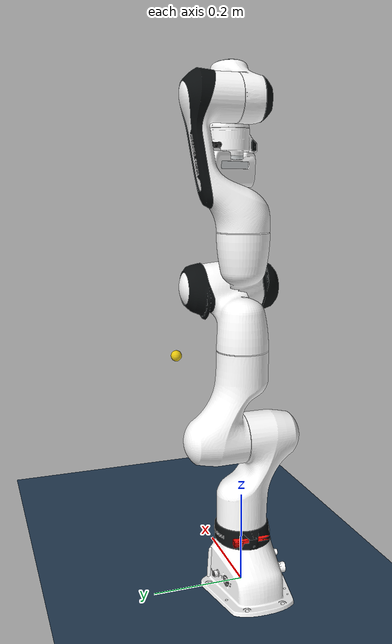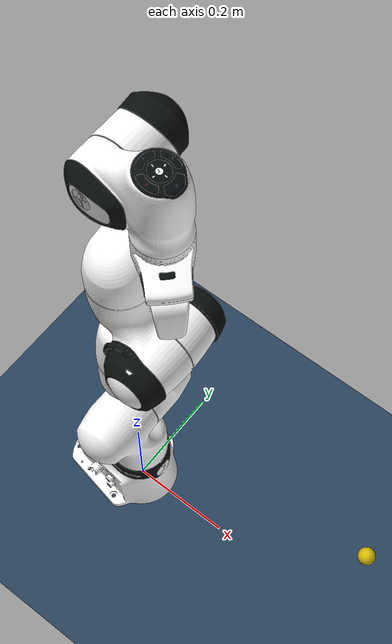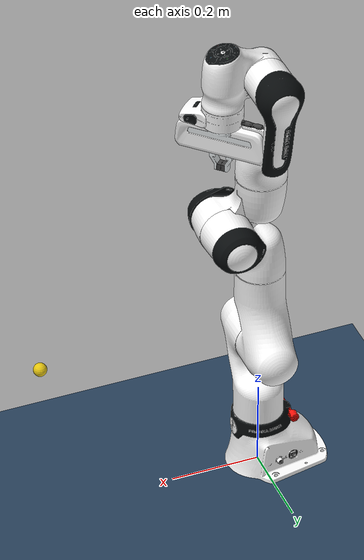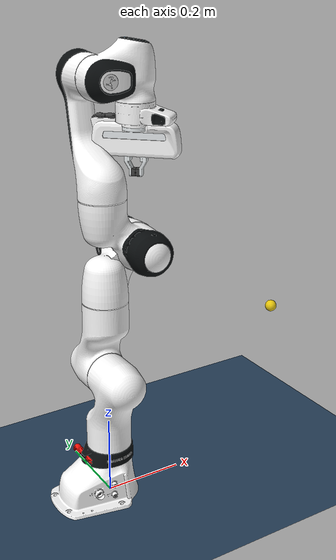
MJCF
<mujoco model="fr3_scene">
  <include file="fr3.xml"/>

  <statistic center="0.35 0 0.35" extent="1.1"/>
  <visual>
    <headlight diffuse="0.6 0.6 0.6" ambient="0.3 0.3 0.3" specular="0 0 0"/>
    <rgba haze="0.15 0.25 0.35 1"/>
    <global azimuth="150" elevation="-25"/>
  </visual>

  <asset>
    <texture type="skybox" builtin="gradient" rgb1="0.3 0.5 0.7" rgb2="0 0 0" width="512" height="3072"/>
    <texture name="groundplane" type="2d" builtin="checker" mark="edge" rgb1="0.2 0.3 0.4"
             rgb2="0.1 0.2 0.3" markrgb="0.8 0.8 0.8" width="300" height="300"/>
    <material name="groundplane" texture="groundplane" texuniform="true" texrepeat="5 5" reflectance="0.2"/>
  </asset>

  <worldbody>
    <light pos="0 0 2.5" dir="0 0 -1" directional="true"/>
    <geom name="floor" type="plane" size="0 0 0.05" material="groundplane"/>
    <!-- 목표 마커: mocap body. 충돌하지 않음(contype/conaffinity 0). -->
    <body name="target" mocap="true" pos="0.5 0 0.4">
      <geom name="target_marker" type="sphere" size="0.015" rgba="1 0.85 0 0.85"
            contype="0" conaffinity="0" group="1"/>
    </body>
  </worldbody>
</mujoco>

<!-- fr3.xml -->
<mujoco model="fr3_hand">
  <compiler angle="radian" meshdir="../meshes/" autolimits="true"/>
  <option timestep="0.002" integrator="implicitfast"/>
  <asset>
    <mesh name="fr3_link0_v0" content_type="model/obj" file="visual/fr3_link0_v0.obj"/>
    <mesh name="fr3_link0_v1" content_type="model/obj" file="visual/fr3_link0_v1.obj"/>
    <mesh name="fr3_link0_v2" content_type="model/obj" file="visual/fr3_link0_v2.obj"/>
    <mesh name="fr3_link0_v3" content_type="model/obj" file="visual/fr3_link0_v3.obj"/>
    <mesh name="fr3_link0_c" content_type="model/stl" file="collision/fr3_link0_c.stl"/>
    <mesh name="fr3_link1_v0" content_type="model/obj" file="visual/fr3_link1_v0.obj"/>
    <mesh name="fr3_link1_c" content_type="model/stl" file="collision/fr3_link1_c.stl"/>
    <mesh name="fr3_link2_v0" content_type="model/obj" file="visual/fr3_link2_v0.obj"/>
    <mesh name="fr3_link2_c" content_type="model/stl" file="collision/fr3_link2_c.stl"/>
    <mesh name="fr3_link3_v0" content_type="model/obj" file="visual/fr3_link3_v0.obj"/>
    <mesh name="fr3_link3_v1" content_type="model/obj" file="visual/fr3_link3_v1.obj"/>
    <mesh name="fr3_link3_c" content_type="model/stl" file="collision/fr3_link3_c.stl"/>
    <mesh name="fr3_link4_v0" content_type="model/obj" file="visual/fr3_link4_v0.obj"/>
    <mesh name="fr3_link4_v1" content_type="model/obj" file="visual/fr3_link4_v1.obj"/>
    <mesh name="fr3_link4_c" content_type="model/stl" file="collision/fr3_link4_c.stl"/>
    <mesh name="fr3_link5_v0" content_type="model/obj" file="visual/fr3_link5_v0.obj"/>
    <mesh name="fr3_link5_v1" content_type="model/obj" file="visual/fr3_link5_v1.obj"/>
    <mesh name="fr3_link5_c" content_type="model/stl" file="collision/fr3_link5_c.stl"/>
    <mesh name="fr3_link6_v0" content_type="model/obj" file="visual/fr3_link6_v0.obj"/>
    <mesh name="fr3_link6_v1" content_type="model/obj" file="visual/fr3_link6_v1.obj"/>
    <mesh name="fr3_link6_v2" content_type="model/obj" file="visual/fr3_link6_v2.obj"/>
    <mesh name="fr3_link6_v3" content_type="model/obj" file="visual/fr3_link6_v3.obj"/>
    <mesh name="fr3_link6_v4" content_type="model/obj" file="visual/fr3_link6_v4.obj"/>
    <mesh name="fr3_link6_v5" content_type="model/obj" file="visual/fr3_link6_v5.obj"/>
    <mesh name="fr3_link6_c" content_type="model/stl" file="collision/fr3_link6_c.stl"/>
    <mesh name="fr3_link7_v0" content_type="model/obj" file="visual/fr3_link7_v0.obj"/>
    <mesh name="fr3_link7_v1" content_type="model/obj" file="visual/fr3_link7_v1.obj"/>
    <mesh name="fr3_link7_v2" content_type="model/obj" file="visual/fr3_link7_v2.obj"/>
    <mesh name="fr3_link7_c" content_type="model/stl" file="collision/fr3_link7_c.stl"/>
    <mesh name="hand_hand_v0" content_type="model/obj" file="visual/hand_hand_v0.obj"/>
    <mesh name="hand_hand_v1" content_type="model/obj" file="visual/hand_hand_v1.obj"/>
    <mesh name="hand_hand_v2" content_type="model/obj" file="visual/hand_hand_v2.obj"/>
    <mesh name="hand_hand_c" content_type="model/stl" file="collision/hand_hand_c.stl"/>
    <mesh name="hand_finger_v0" content_type="model/obj" file="visual/hand_finger_v0.obj"/>
    <mesh name="hand_finger_v1" content_type="model/obj" file="visual/hand_finger_v1.obj"/>
  </asset>
  <worldbody>
    <body name="base">
      <body name="fr3_link0">
        <inertial pos="-0.0172 0.00040000000000000002 0.074499999999999997" quat="0.66137700591566306 -0.25016086033996937 -0.25016086033996937 0.66137700591566306" mass="2.3965999999999998" diaginertia="0.011499999999999996 0.010765564437074635 0.0067344355629253613"/>
        <geom name="fr3_link0_vis0" pos="0 0 0" quat="1 0 0 0" type="mesh" contype="0" conaffinity="0" group="2" density="0" mesh="fr3_link0_v0" rgba="1 1 1 1"/>
        <geom name="fr3_link0_vis1" pos="0 0 0" quat="1 0 0 0" type="mesh" contype="0" conaffinity="0" group="2" density="0" mesh="fr3_link0_v1" rgba="1 0.071 0.039 1"/>
        <geom name="fr3_link0_vis2" pos="0 0 0" quat="1 0 0 0" type="mesh" contype="0" conaffinity="0" group="2" density="0" mesh="fr3_link0_v2" rgba="0.039 0.051 0.055 1"/>
        <geom name="fr3_link0_vis3" pos="0 0 0" quat="1 0 0 0" type="mesh" contype="0" conaffinity="0" group="2" density="0" mesh="fr3_link0_v3" rgba="0.02 0.02 0.02 1"/>
        <geom name="fr3_link0_col0" pos="0 0 0" quat="1 0 0 0" type="mesh" mesh="fr3_link0_c" group="3" rgba="0.8 0.3 0.3 0.4"/>
        <body name="fr3_link1" pos="0 0 0.333" gravcomp="1">
          <inertial pos="4.1279999999999999e-07 -0.018125132400000001 -0.038603597000000003" quat="0.99809800313002273 -0.060536425540137787 0.0038048852336018285 0.011010911817107692" mass="2.9274653453999999" diaginertia="0.023928621697059446 0.022724615921689208 0.0061063384524649321"/>
          <joint name="fr3_joint1" range="-2.9007 2.9007" actuatorfrcrange="-87 87" damping="0.003" frictionloss="0.2" armature="0.6057" actuatorgravcomp="true"/>
          <geom name="fr3_link1_vis0" quat="1 0 0 0" type="mesh" contype="0" conaffinity="0" group="2" density="0" mesh="fr3_link1_v0" rgba="1 1 1 1"/>
          <geom name="fr3_link1_col0" quat="1 0 0 0" type="mesh" mesh="fr3_link1_c" group="3" rgba="0.8 0.3 0.3 0.4"/>
          <body name="fr3_link2" quat="0.707107 -0.707107 0 0" gravcomp="1">
            <inertial pos="0.0031828863999999999 -0.074322164400000001 0.0088146084" quat="0.50259976647685223 0.58443644182649213 -0.46599807858824815 0.43436541178444088" mass="2.9355370338000002" diaginertia="0.062956723529790579 0.04119244983839894 0.024637066468455638"/>
            <joint name="fr3_joint2" range="-1.8361 1.8361" actuatorfrcrange="-87 87" damping="0.003" frictionloss="0.2" armature="0.6057" actuatorgravcomp="true"/>
            <geom name="fr3_link2_vis0" quat="1 0 0 0" type="mesh" contype="0" conaffinity="0" group="2" density="0" mesh="fr3_link2_v0" rgba="1 1 1 1"/>
            <geom name="fr3_link2_col0" quat="1 0 0 0" type="mesh" mesh="fr3_link2_c" group="3" rgba="0.8 0.3 0.3 0.4"/>
            <body name="fr3_link3" pos="0 -0.316 0" quat="0.707107 0.707107 0 0" gravcomp="1">
              <inertial pos="0.040701568600000002 -0.0048200565000000003 -0.028973082300000001" quat="0.92102538508631182 -0.24416120251242499 0.15527184300288374 0.26074547356528777" mass="2.2449013699" diaginertia="0.026740890527039776 0.018986875212643316 0.017158686882052458"/>
              <joint name="fr3_joint3" range="-2.9007 2.9007" actuatorfrcrange="-87 87" damping="0.003" frictionloss="0.2" armature="0.4625" actuatorgravcomp="true"/>
              <geom name="fr3_link3_vis0" pos="0 0 0" quat="1 0 0 0" type="mesh" contype="0" conaffinity="0" group="2" density="0" mesh="fr3_link3_v0" rgba="0.039 0.051 0.055 1"/>
              <geom name="fr3_link3_vis1" pos="0 0 0" quat="1 0 0 0" type="mesh" contype="0" conaffinity="0" group="2" density="0" mesh="fr3_link3_v1" rgba="1 1 1 1"/>
              <geom name="fr3_link3_col0" pos="0 0 0" quat="1 0 0 0" type="mesh" mesh="fr3_link3_c" group="3" rgba="0.8 0.3 0.3 0.4"/>
              <body name="fr3_link4" pos="0.0825 0 0" quat="0.707107 0.707107 0 0" gravcomp="1">
                <inertial pos="-0.045910096499999997 0.063049296000000005 -0.0085187868000000007" quat="0.43801844766146814 0.8033110900457674 0.0093781191236861627 0.40341440603853262" mass="2.6155955790999998" diaginertia="0.051389992440662266 0.037271660910407969 0.01600466351257724"/>
                <joint name="fr3_joint4" range="-3.077 -0.1169" actuatorfrcrange="-87 87" damping="0.003" frictionloss="0.2" armature="0.4625" actuatorgravcomp="true"/>
                <geom name="fr3_link4_vis0" pos="0 0 0" quat="1 0 0 0" type="mesh" contype="0" conaffinity="0" group="2" density="0" mesh="fr3_link4_v0" rgba="0.039 0.051 0.055 1"/>
                <geom name="fr3_link4_vis1" pos="0 0 0" quat="1 0 0 0" type="mesh" contype="0" conaffinity="0" group="2" density="0" mesh="fr3_link4_v1" rgba="1 1 1 1"/>
                <geom name="fr3_link4_col0" pos="0 0 0" quat="1 0 0 0" type="mesh" mesh="fr3_link4_c" group="3" rgba="0.8 0.3 0.3 0.4"/>
                <body name="fr3_link5" pos="-0.0825 0.384 0" quat="0.707107 -0.707107 0 0" gravcomp="1">
                  <inertial pos="-0.0016039604999999999 0.029253626200000001 -0.097296598999999998" quat="0.91903077438841418 0.12560397655368399 0.075153119527177265 -0.36600284893190044" mass="2.3271207594000001" diaginertia="0.057933454848597986 0.044914371640206521 0.013063374687930548"/>
                  <joint name="fr3_joint5" range="-2.8763 2.8763" actuatorfrcrange="-12 12" damping="0.003" frictionloss="0.2" armature="0.2055" actuatorgravcomp="true"/>
                  <geom name="fr3_link5_vis0" pos="0 0 0" quat="1 0 0 0" type="mesh" contype="0" conaffinity="0" group="2" density="0" mesh="fr3_link5_v0" rgba="0.039 0.051 0.055 1"/>
                  <geom name="fr3_link5_vis1" quat="1 0 0 0" type="mesh" contype="0" conaffinity="0" group="2" density="0" mesh="fr3_link5_v1" rgba="1 1 1 1"/>
                  <geom name="fr3_link5_col0" type="mesh" mesh="fr3_link5_c" group="3" rgba="0.8 0.3 0.3 0.4"/>
                  <body name="fr3_link6" quat="0.707107 0.707107 0 0" gravcomp="1">
                    <inertial pos="0.059713122100000002 -0.041029466600000002 -0.010169272599999999" quat="0.62130083117046553 0.55266529968596689 0.51001065758597353 0.22008060536684096" mass="1.8170376524" diaginertia="0.017503895201847728 0.016112298415796311 0.001935287446461957"/>
                    <joint name="fr3_joint6" range="0.4398 4.6216" actuatorfrcrange="-12 12" damping="0.003" frictionloss="0.2" armature="0.2055" actuatorgravcomp="true"/>
                    <geom name="fr3_link6_vis0" pos="0 0 0" quat="1 0 0 0" type="mesh" contype="0" conaffinity="0" group="2" density="0" mesh="fr3_link6_v0" rgba="0.039 0.051 0.055 1"/>
                    <geom name="fr3_link6_vis1" pos="0 0 0" quat="1 0 0 0" type="mesh" contype="0" conaffinity="0" group="2" density="0" mesh="fr3_link6_v1" rgba="1 1 1 1"/>
                    <geom name="fr3_link6_vis2" pos="0 0 0" quat="1 0 0 0" type="mesh" contype="0" conaffinity="0" group="2" density="0" mesh="fr3_link6_v2" rgba="0.863 0.863 0.863 1"/>
                    <geom name="fr3_link6_vis3" pos="0 0 0" quat="1 0 0 0" type="mesh" contype="0" conaffinity="0" group="2" density="0" mesh="fr3_link6_v3" rgba="0.024 0.447 0.737 1"/>
                    <geom name="fr3_link6_vis4" quat="1 0 0 0" type="mesh" contype="0" conaffinity="0" group="2" density="0" mesh="fr3_link6_v4" rgba="0.522 0.008 0.012 1"/>
                    <geom name="fr3_link6_vis5" pos="0 0 0" quat="1 0 0 0" type="mesh" contype="0" conaffinity="0" group="2" density="0" mesh="fr3_link6_v5" rgba="0.102 0.573 0.102 1"/>
                    <geom name="fr3_link6_col0" pos="0 0 0" quat="1 0 0 0" type="mesh" mesh="fr3_link6_c" group="3" rgba="0.8 0.3 0.3 0.4"/>
                    <body name="fr3_link7" pos="0.088 0 0" quat="0.707107 0.707107 0 0" gravcomp="1">
                      <inertial pos="0.0045225817000000001 0.0086261920999999991 -0.016163325100000001" quat="0.72757878421771505 0.097868318802630985 -0.24906008833507937 0.63168028094087503" mass="0.62714328620000004" diaginertia="0.00022383581573723308 0.00022364152990730823 5.6413187722098554e-07"/>
                      <joint name="fr3_joint7" range="-3.0508 3.0508" actuatorfrcrange="-12 12" damping="0.003" frictionloss="0.2" armature="0.2055" actuatorgravcomp="true"/>
                      <geom name="fr3_link7_vis0" pos="0 0 0" quat="1 0 0 0" type="mesh" contype="0" conaffinity="0" group="2" density="0" mesh="fr3_link7_v0" rgba="1 1 1 1"/>
                      <geom name="fr3_link7_vis1" pos="0 0 0" quat="1 0 0 0" type="mesh" contype="0" conaffinity="0" group="2" density="0" mesh="fr3_link7_v1" rgba="0.039 0.051 0.055 1"/>
                      <geom name="fr3_link7_vis2" pos="0 0 0" quat="1 0 0 0" type="mesh" contype="0" conaffinity="0" group="2" density="0" mesh="fr3_link7_v2" rgba="0.02 0.02 0.02 1"/>
                      <geom name="fr3_link7_col0" pos="0 0 0" quat="1 0 0 0" type="mesh" mesh="fr3_link7_c" group="3" rgba="0.8 0.3 0.3 0.4"/>
                      <body name="fr3_link8" pos="0 0 0.107" gravcomp="1">
                        <body name="fr3_hand" quat="0.92388 0 0 -0.382683" gravcomp="1">
                          <inertial pos="-3.7599999999999999e-05 0.011912799999999999 0.020726000000000001" quat="0.7021805778734298 0.71199890172481117 0 0" mass="0.65439999999999998" diaginertia="0.0018599999999999988 0.0017402777242147632 0.00029972227578523556"/>
                          <geom name="fr3_hand_vis0" quat="1 0 0 0" type="mesh" contype="0" conaffinity="0" group="2" density="0" mesh="hand_hand_v0" rgba="1 1 1 1"/>
                          <geom name="fr3_hand_vis1" pos="0 0 0" quat="1 0 0 0" type="mesh" contype="0" conaffinity="0" group="2" density="0" mesh="hand_hand_v1" rgba="0.251 0.251 0.251 1"/>
                          <geom name="fr3_hand_vis2" quat="1 0 0 0" type="mesh" contype="0" conaffinity="0" group="2" density="0" mesh="hand_hand_v2" rgba="0.902 0.922 0.929 1"/>
                          <geom name="fr3_hand_col0" quat="1 0 0 0" type="mesh" mesh="hand_hand_c" group="3" rgba="0.8 0.3 0.3 0.4"/>
                          <body name="fr3_hand_tcp" pos="0 0 0.1034" gravcomp="1">
                            <site name="tcp" pos="0 0 0" size="0.006" rgba="1 0.2 0.2 1" group="4"/>
                          </body>
                          <body name="fr3_leftfinger" pos="0 0 0.0584" gravcomp="1">
                            <inertial pos="0 0.015285 0.021967500000000001" quat="0.70506704448382862 -0.053669943011332162 0.053669943011332162 0.70506704448382862" mass="0.029100000000000001" diaginertia="8.6923156268181461e-06 8.4900000000000034e-06 1.6076843731818597e-06"/>
                            <joint name="fr3_finger_joint1" type="slide" range="0 0.04" actuatorfrcrange="-100 100" damping="0.3" axis="0 1 0" actuatorgravcomp="true"/>
                            <geom name="fr3_leftfinger_vis0" quat="1 0 0 0" type="mesh" contype="0" conaffinity="0" group="2" density="0" mesh="hand_finger_v0" rgba="0.902 0.922 0.929 1"/>
                            <geom name="fr3_leftfinger_vis1" quat="1 0 0 0" type="mesh" contype="0" conaffinity="0" group="2" density="0" mesh="hand_finger_v1" rgba="0.251 0.251 0.251 1"/>
                            <geom name="fr3_leftfinger_col0" size="0.011 0.0075 0.01" pos="0 0.0185 0.011" type="box" group="3" rgba="0.8 0.3 0.3 0.4"/>
                            <geom name="fr3_leftfinger_col1" size="0.011 0.0044 0.0019" pos="0 0.0068 0.0022" type="box" group="3" rgba="0.8 0.3 0.3 0.4"/>
                            <geom name="fr3_leftfinger_col2" size="0.00875 0.0035 0.01175" pos="0 0.0159 0.02835" quat="0.965926 0.258819 0 0" type="box" group="3" rgba="0.8 0.3 0.3 0.4"/>
                            <geom name="fr3_leftfinger_col3" size="0.00875 0.0076 0.00925" pos="0 0.00758 0.04525" type="box" group="3" rgba="0.8 0.3 0.3 0.4"/>
                          </body>
                          <body name="fr3_rightfinger" pos="0 0 0.0584" quat="0 0 0 1" gravcomp="1">
                            <inertial pos="0 0.015285 0.021967500000000001" quat="0.70506704448382862 -0.053669943011332162 0.053669943011332162 0.70506704448382862" mass="0.029100000000000001" diaginertia="8.6923156268181461e-06 8.4900000000000034e-06 1.6076843731818597e-06"/>
                            <joint name="fr3_finger_joint2" type="slide" range="0 0.04" actuatorfrcrange="-100 100" damping="0.3" axis="0 1 0" actuatorgravcomp="true"/>
                            <geom name="fr3_rightfinger_vis0" quat="1 0 0 0" type="mesh" contype="0" conaffinity="0" group="2" density="0" mesh="hand_finger_v0" rgba="0.902 0.922 0.929 1"/>
                            <geom name="fr3_rightfinger_vis1" quat="1 0 0 0" type="mesh" contype="0" conaffinity="0" group="2" density="0" mesh="hand_finger_v1" rgba="0.251 0.251 0.251 1"/>
                            <geom name="fr3_rightfinger_col0" size="0.011 0.0075 0.01" pos="0 0.0185 0.011" type="box" group="3" rgba="0.8 0.3 0.3 0.4"/>
                            <geom name="fr3_rightfinger_col1" size="0.011 0.0044 0.0019" pos="0 0.0068 0.0022" type="box" group="3" rgba="0.8 0.3 0.3 0.4"/>
                            <geom name="fr3_rightfinger_col2" size="0.00875 0.0035 0.01175" pos="0 0.0159 0.02835" quat="0 0 -0.258819 0.965926" type="box" group="3" rgba="0.8 0.3 0.3 0.4"/>
                            <geom name="fr3_rightfinger_col3" size="0.00875 0.0076 0.00925" pos="0 0.00758 0.04525" type="box" group="3" rgba="0.8 0.3 0.3 0.4"/>
                          </body>
                        </body>
                      </body>
                    </body>
                  </body>
                </body>
              </body>
            </body>
          </body>
        </body>
      </body>
    </body>
  </worldbody>
  <equality>
    <joint joint1="fr3_finger_joint2" joint2="fr3_finger_joint1"/>
  </equality>
  <contact>
    <exclude body1="fr3_link7" body2="fr3_hand"/>
  </contact>
  <actuator>
    <position name="act_joint1" joint="fr3_joint1" kp="4500" kv="450" ctrlrange="-2.9007 2.9007" forcerange="-87 87"/>
    <position name="act_joint2" joint="fr3_joint2" kp="4500" kv="450" ctrlrange="-1.8361 1.8361" forcerange="-87 87"/>
    <position name="act_joint3" joint="fr3_joint3" kp="4500" kv="450" ctrlrange="-2.9007 2.9007" forcerange="-87 87"/>
    <position name="act_joint4" joint="fr3_joint4" kp="4500" kv="450" ctrlrange="-3.077 -0.1169" forcerange="-87 87"/>
    <position name="act_joint5" joint="fr3_joint5" kp="2000" kv="200" ctrlrange="-2.8763 2.8763" forcerange="-12 12"/>
    <position name="act_joint6" joint="fr3_joint6" kp="2000" kv="200" ctrlrange="0.4398 4.6216" forcerange="-12 12"/>
    <position name="act_joint7" joint="fr3_joint7" kp="2000" kv="200" ctrlrange="-3.0508 3.0508" forcerange="-12 12"/>
    <position name="act_finger" joint="fr3_finger_joint1" kp="100" kv="3" ctrlrange="0 0.04" forcerange="-20 20"/>
  </actuator>
  <keyframe>
    <key name="home" qpos="0 -0.7853981634 0 -2.35619449 0 1.570796327 0.7853981634 0.04 0.04" ctrl="0 -0.7853981634 0 -2.35619449 0 1.570796327 0.7853981634 0.04"/>
  </keyframe>
</mujoco>
